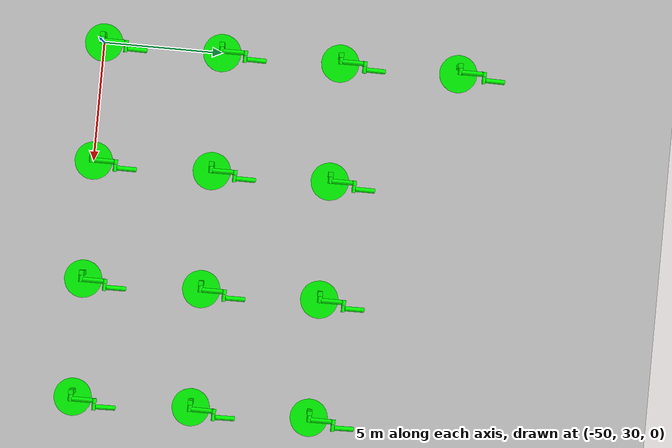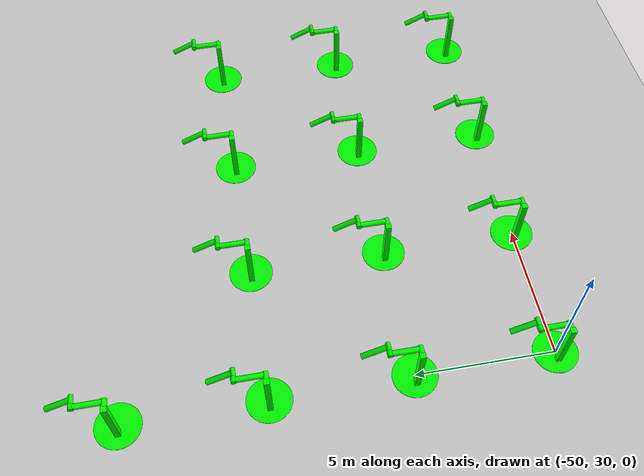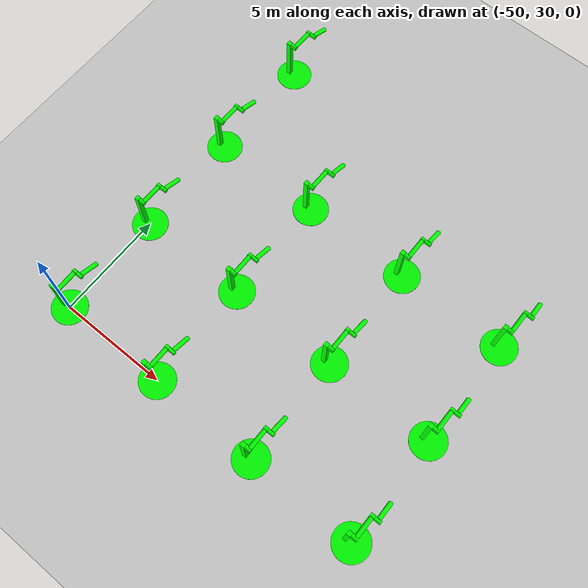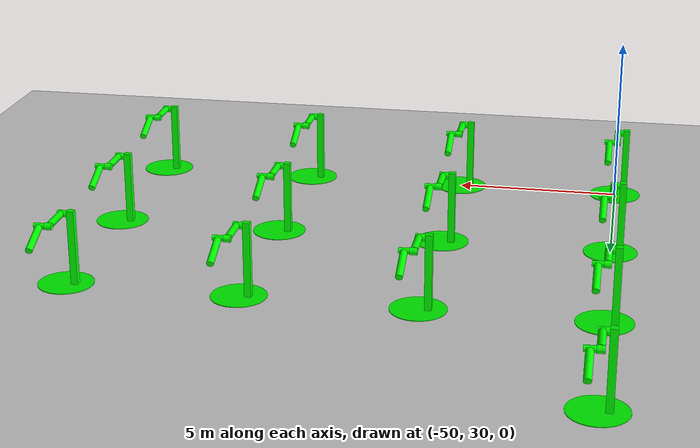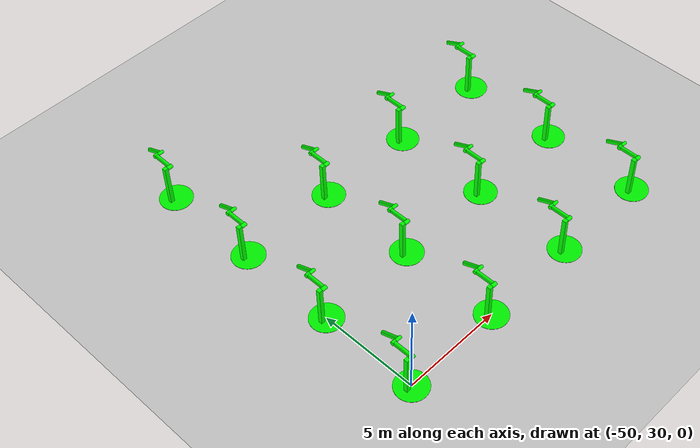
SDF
<sdf version="1.6">
 <world name="double_pendulums">
  <model name="ground_plane">
   <static>true</static>
   <link name="link">
    <collision name="collision">
     <geometry><plane><normal>0 0 1</normal><size>100 100</size></plane></geometry>
    </collision>
    <visual name="visual">
     <geometry><plane><normal>0 0 1</normal><size>100 100</size></plane></geometry>
     <material>
      <ambient>0.8 0.8 0.8 1</ambient>
      <diffuse>0.8 0.8 0.8 1</diffuse>
      <specular>0.8 0.8 0.8 1</specular>
     </material>
    </visual>
   </link>
  </model>
  <model name="dbl_pendulum_150">
   <pose>-50 30 0 0 0 0</pose>
   <link name="base">
    <inertial><mass>100</mass></inertial>
    <visual name="vis_plate_on_ground">
     <pose>0 0 0.01 0 0 0</pose>
     <geometry><cylinder><radius>0.8</radius><length>0.02</length></cylinder></geometry>
     <material><ambient>0 1 0 1</ambient><diffuse>0 1 0 1</diffuse><specular>0 1 0 1</specular></material>
    </visual>
    <visual name="vis_pole">
     <pose>-0.275 0 1.1 0 0 0</pose>
     <geometry><box><size>0.2 0.2 2.2</size></box></geometry>
     <material><ambient>0 1 0 1</ambient><diffuse>0 1 0 1</diffuse><specular>0 1 0 1</specular></material>
    </visual>
    <collision name="col_plate_on_ground">
     <pose>0 0 0.01 0 0 0</pose>
     <geometry><cylinder><radius>0.8</radius><length>0.02</length></cylinder></geometry>
    </collision>
    <collision name="col_pole">
     <pose>-0.275 0 1.1 0 0 0</pose>
     <geometry><box><size>0.2 0.2 2.2</size></box></geometry>
    </collision>
   </link>
   <link name="upper_link">
    <pose>0 0 2.1 -1.5708 0 0</pose>
    <inertial><pose>0 0 0.5 0 0 0</pose></inertial>
    <visual name="vis_upper_joint">
     <pose>-0.05 0 0 0 1.5708 0</pose>
     <geometry><cylinder><radius>0.1</radius><length>0.3</length></cylinder></geometry>
     <material><ambient>0 1 0 1</ambient><diffuse>0 1 0 1</diffuse><specular>0 1 0 1</specular></material>
    </visual>
    <visual name="vis_lower_joint">
     <pose>0 0 1.0 0 1.5708 0</pose>
     <geometry><cylinder><radius>0.1</radius><length>0.2</length></cylinder></geometry>
     <material><ambient>0 1 0 1</ambient><diffuse>0 1 0 1</diffuse><specular>0 1 0 1</specular></material>
    </visual>
    <visual name="vis_cylinder">
     <pose>0 0 0.5 0 0 0</pose>
     <geometry><cylinder><radius>0.1</radius><length>0.9</length></cylinder></geometry>
     <material><ambient>0 1 0 1</ambient><diffuse>0 1 0 1</diffuse><specular>0 1 0 1</specular></material>
    </visual>
    <collision name="col_upper_joint">
     <pose>-0.05 0 0 0 1.5708 0</pose>
     <geometry><cylinder><radius>0.1</radius><length>0.3</length></cylinder></geometry>
    </collision>
    <collision name="col_lower_joint">
     <pose>0 0 1.0 0 1.5708 0</pose>
     <geometry><cylinder><radius>0.1</radius><length>0.2</length></cylinder></geometry>
    </collision>
    <collision name="col_cylinder">
     <pose>0 0 0.5 0 0 0</pose>
     <geometry><cylinder><radius>0.1</radius><length>0.9</length></cylinder></geometry>
    </collision>
   </link>
   <link name="lower_link">
    <pose>0.25 1.0 2.1 -2 0 0</pose>
    <inertial><pose>0 0 0.5 0 0 0</pose></inertial>
    <visual name="vis_lower_joint">
     <pose>0 0 0 0 1.5708 0</pose>
     <geometry><cylinder><radius>0.08</radius><length>0.3</length></cylinder></geometry>
     <material><ambient>0 1 0 1</ambient><diffuse>0 1 0 1</diffuse><specular>0 1 0 1</specular></material>
    </visual>
    <visual name="vis_cylinder">
     <pose>0 0 0.5 0 0 0</pose>
     <geometry><cylinder><radius>0.1</radius><length>0.9</length></cylinder></geometry>
     <material><ambient>0 1 0 1</ambient><diffuse>0 1 0 1</diffuse><specular>0 1 0 1</specular></material>
    </visual>
    <collision name="col_lower_joint">
     <pose>0 0 0 0 1.5708 0</pose>
     <geometry><cylinder><radius>0.08</radius><length>0.3</length></cylinder></geometry>
    </collision>
    <collision name="col_cylinder">
     <pose>0 0 0.5 0 0 0</pose>
     <geometry><cylinder><radius>0.1</radius><length>0.9</length></cylinder></geometry>
    </collision>
   </link>
   <joint name="upper_joint" type="revolute">
    <parent>base</parent>
    <child>upper_link</child>
    <axis><xyz>1.0 0 0</xyz></axis>
   </joint>
   <joint name="lower_joint" type="revolute">
    <parent>upper_link</parent>
    <child>lower_link</child>
    <axis><xyz>1.0 0 0</xyz></axis>
   </joint>
  </model>
  <model name="dbl_pendulum_151">
   <pose>-45 30 0 0 0 0</pose>
   <link name="base">
    <inertial><mass>100</mass></inertial>
    <visual name="vis_plate_on_ground">
     <pose>0 0 0.01 0 0 0</pose>
     <geometry><cylinder><radius>0.8</radius><length>0.02</length></cylinder></geometry>
     <material><ambient>0 1 0 1</ambient><diffuse>0 1 0 1</diffuse><specular>0 1 0 1</specular></material>
    </visual>
    <visual name="vis_pole">
     <pose>-0.275 0 1.1 0 0 0</pose>
     <geometry><box><size>0.2 0.2 2.2</size></box></geometry>
     <material><ambient>0 1 0 1</ambient><diffuse>0 1 0 1</diffuse><specular>0 1 0 1</specular></material>
    </visual>
    <collision name="col_plate_on_ground">
     <pose>0 0 0.01 0 0 0</pose>
     <geometry><cylinder><radius>0.8</radius><length>0.02</length></cylinder></geometry>
    </collision>
    <collision name="col_pole">
     <pose>-0.275 0 1.1 0 0 0</pose>
     <geometry><box><size>0.2 0.2 2.2</size></box></geometry>
    </collision>
   </link>
   <link name="upper_link">
    <pose>0 0 2.1 -1.5708 0 0</pose>
    <inertial><pose>0 0 0.5 0 0 0</pose></inertial>
    <visual name="vis_upper_joint">
     <pose>-0.05 0 0 0 1.5708 0</pose>
     <geometry><cylinder><radius>0.1</radius><length>0.3</length></cylinder></geometry>
     <material><ambient>0 1 0 1</ambient><diffuse>0 1 0 1</diffuse><specular>0 1 0 1</specular></material>
    </visual>
    <visual name="vis_lower_joint">
     <pose>0 0 1.0 0 1.5708 0</pose>
     <geometry><cylinder><radius>0.1</radius><length>0.2</length></cylinder></geometry>
     <material><ambient>0 1 0 1</ambient><diffuse>0 1 0 1</diffuse><specular>0 1 0 1</specular></material>
    </visual>
    <visual name="vis_cylinder">
     <pose>0 0 0.5 0 0 0</pose>
     <geometry><cylinder><radius>0.1</radius><length>0.9</length></cylinder></geometry>
     <material><ambient>0 1 0 1</ambient><diffuse>0 1 0 1</diffuse><specular>0 1 0 1</specular></material>
    </visual>
    <collision name="col_upper_joint">
     <pose>-0.05 0 0 0 1.5708 0</pose>
     <geometry><cylinder><radius>0.1</radius><length>0.3</length></cylinder></geometry>
    </collision>
    <collision name="col_lower_joint">
     <pose>0 0 1.0 0 1.5708 0</pose>
     <geometry><cylinder><radius>0.1</radius><length>0.2</length></cylinder></geometry>
    </collision>
    <collision name="col_cylinder">
     <pose>0 0 0.5 0 0 0</pose>
     <geometry><cylinder><radius>0.1</radius><length>0.9</length></cylinder></geometry>
    </collision>
   </link>
   <link name="lower_link">
    <pose>0.25 1.0 2.1 -2 0 0</pose>
    <inertial><pose>0 0 0.5 0 0 0</pose></inertial>
    <visual name="vis_lower_joint">
     <pose>0 0 0 0 1.5708 0</pose>
     <geometry><cylinder><radius>0.08</radius><length>0.3</length></cylinder></geometry>
     <material><ambient>0 1 0 1</ambient><diffuse>0 1 0 1</diffuse><specular>0 1 0 1</specular></material>
    </visual>
    <visual name="vis_cylinder">
     <pose>0 0 0.5 0 0 0</pose>
     <geometry><cylinder><radius>0.1</radius><length>0.9</length></cylinder></geometry>
     <material><ambient>0 1 0 1</ambient><diffuse>0 1 0 1</diffuse><specular>0 1 0 1</specular></material>
    </visual>
    <collision name="col_lower_joint">
     <pose>0 0 0 0 1.5708 0</pose>
     <geometry><cylinder><radius>0.08</radius><length>0.3</length></cylinder></geometry>
    </collision>
    <collision name="col_cylinder">
     <pose>0 0 0.5 0 0 0</pose>
     <geometry><cylinder><radius>0.1</radius><length>0.9</length></cylinder></geometry>
    </collision>
   </link>
   <joint name="upper_joint" type="revolute">
    <parent>base</parent>
    <child>upper_link</child>
    <axis><xyz>1.0 0 0</xyz></axis>
   </joint>
   <joint name="lower_joint" type="revolute">
    <parent>upper_link</parent>
    <child>lower_link</child>
    <axis><xyz>1.0 0 0</xyz></axis>
   </joint>
  </model>
  <model name="dbl_pendulum_152">
   <pose>-40 30 0 0 0 0</pose>
   <link name="base">
    <inertial><mass>100</mass></inertial>
    <visual name="vis_plate_on_ground">
     <pose>0 0 0.01 0 0 0</pose>
     <geometry><cylinder><radius>0.8</radius><length>0.02</length></cylinder></geometry>
     <material><ambient>0 1 0 1</ambient><diffuse>0 1 0 1</diffuse><specular>0 1 0 1</specular></material>
    </visual>
    <visual name="vis_pole">
     <pose>-0.275 0 1.1 0 0 0</pose>
     <geometry><box><size>0.2 0.2 2.2</size></box></geometry>
     <material><ambient>0 1 0 1</ambient><diffuse>0 1 0 1</diffuse><specular>0 1 0 1</specular></material>
    </visual>
    <collision name="col_plate_on_ground">
     <pose>0 0 0.01 0 0 0</pose>
     <geometry><cylinder><radius>0.8</radius><length>0.02</length></cylinder></geometry>
    </collision>
    <collision name="col_pole">
     <pose>-0.275 0 1.1 0 0 0</pose>
     <geometry><box><size>0.2 0.2 2.2</size></box></geometry>
    </collision>
   </link>
   <link name="upper_link">
    <pose>0 0 2.1 -1.5708 0 0</pose>
    <inertial><pose>0 0 0.5 0 0 0</pose></inertial>
    <visual name="vis_upper_joint">
     <pose>-0.05 0 0 0 1.5708 0</pose>
     <geometry><cylinder><radius>0.1</radius><length>0.3</length></cylinder></geometry>
     <material><ambient>0 1 0 1</ambient><diffuse>0 1 0 1</diffuse><specular>0 1 0 1</specular></material>
    </visual>
    <visual name="vis_lower_joint">
     <pose>0 0 1.0 0 1.5708 0</pose>
     <geometry><cylinder><radius>0.1</radius><length>0.2</length></cylinder></geometry>
     <material><ambient>0 1 0 1</ambient><diffuse>0 1 0 1</diffuse><specular>0 1 0 1</specular></material>
    </visual>
    <visual name="vis_cylinder">
     <pose>0 0 0.5 0 0 0</pose>
     <geometry><cylinder><radius>0.1</radius><length>0.9</length></cylinder></geometry>
     <material><ambient>0 1 0 1</ambient><diffuse>0 1 0 1</diffuse><specular>0 1 0 1</specular></material>
    </visual>
    <collision name="col_upper_joint">
     <pose>-0.05 0 0 0 1.5708 0</pose>
     <geometry><cylinder><radius>0.1</radius><length>0.3</length></cylinder></geometry>
    </collision>
    <collision name="col_lower_joint">
     <pose>0 0 1.0 0 1.5708 0</pose>
     <geometry><cylinder><radius>0.1</radius><length>0.2</length></cylinder></geometry>
    </collision>
    <collision name="col_cylinder">
     <pose>0 0 0.5 0 0 0</pose>
     <geometry><cylinder><radius>0.1</radius><length>0.9</length></cylinder></geometry>
    </collision>
   </link>
   <link name="lower_link">
    <pose>0.25 1.0 2.1 -2 0 0</pose>
    <inertial><pose>0 0 0.5 0 0 0</pose></inertial>
    <visual name="vis_lower_joint">
     <pose>0 0 0 0 1.5708 0</pose>
     <geometry><cylinder><radius>0.08</radius><length>0.3</length></cylinder></geometry>
     <material><ambient>0 1 0 1</ambient><diffuse>0 1 0 1</diffuse><specular>0 1 0 1</specular></material>
    </visual>
    <visual name="vis_cylinder">
     <pose>0 0 0.5 0 0 0</pose>
     <geometry><cylinder><radius>0.1</radius><length>0.9</length></cylinder></geometry>
     <material><ambient>0 1 0 1</ambient><diffuse>0 1 0 1</diffuse><specular>0 1 0 1</specular></material>
    </visual>
    <collision name="col_lower_joint">
     <pose>0 0 0 0 1.5708 0</pose>
     <geometry><cylinder><radius>0.08</radius><length>0.3</length></cylinder></geometry>
    </collision>
    <collision name="col_cylinder">
     <pose>0 0 0.5 0 0 0</pose>
     <geometry><cylinder><radius>0.1</radius><length>0.9</length></cylinder></geometry>
    </collision>
   </link>
   <joint name="upper_joint" type="revolute">
    <parent>base</parent>
    <child>upper_link</child>
    <axis><xyz>1.0 0 0</xyz></axis>
   </joint>
   <joint name="lower_joint" type="revolute">
    <parent>upper_link</parent>
    <child>lower_link</child>
    <axis><xyz>1.0 0 0</xyz></axis>
   </joint>
  </model>
  <model name="dbl_pendulum_153">
   <pose>-35 30 0 0 0 0</pose>
   <link name="base">
    <inertial><mass>100</mass></inertial>
    <visual name="vis_plate_on_ground">
     <pose>0 0 0.01 0 0 0</pose>
     <geometry><cylinder><radius>0.8</radius><length>0.02</length></cylinder></geometry>
     <material><ambient>0 1 0 1</ambient><diffuse>0 1 0 1</diffuse><specular>0 1 0 1</specular></material>
    </visual>
    <visual name="vis_pole">
     <pose>-0.275 0 1.1 0 0 0</pose>
     <geometry><box><size>0.2 0.2 2.2</size></box></geometry>
     <material><ambient>0 1 0 1</ambient><diffuse>0 1 0 1</diffuse><specular>0 1 0 1</specular></material>
    </visual>
    <collision name="col_plate_on_ground">
     <pose>0 0 0.01 0 0 0</pose>
     <geometry><cylinder><radius>0.8</radius><length>0.02</length></cylinder></geometry>
    </collision>
    <collision name="col_pole">
     <pose>-0.275 0 1.1 0 0 0</pose>
     <geometry><box><size>0.2 0.2 2.2</size></box></geometry>
    </collision>
   </link>
   <link name="upper_link">
    <pose>0 0 2.1 -1.5708 0 0</pose>
    <inertial><pose>0 0 0.5 0 0 0</pose></inertial>
    <visual name="vis_upper_joint">
     <pose>-0.05 0 0 0 1.5708 0</pose>
     <geometry><cylinder><radius>0.1</radius><length>0.3</length></cylinder></geometry>
     <material><ambient>0 1 0 1</ambient><diffuse>0 1 0 1</diffuse><specular>0 1 0 1</specular></material>
    </visual>
    <visual name="vis_lower_joint">
     <pose>0 0 1.0 0 1.5708 0</pose>
     <geometry><cylinder><radius>0.1</radius><length>0.2</length></cylinder></geometry>
     <material><ambient>0 1 0 1</ambient><diffuse>0 1 0 1</diffuse><specular>0 1 0 1</specular></material>
    </visual>
    <visual name="vis_cylinder">
     <pose>0 0 0.5 0 0 0</pose>
     <geometry><cylinder><radius>0.1</radius><length>0.9</length></cylinder></geometry>
     <material><ambient>0 1 0 1</ambient><diffuse>0 1 0 1</diffuse><specular>0 1 0 1</specular></material>
    </visual>
    <collision name="col_upper_joint">
     <pose>-0.05 0 0 0 1.5708 0</pose>
     <geometry><cylinder><radius>0.1</radius><length>0.3</length></cylinder></geometry>
    </collision>
    <collision name="col_lower_joint">
     <pose>0 0 1.0 0 1.5708 0</pose>
     <geometry><cylinder><radius>0.1</radius><length>0.2</length></cylinder></geometry>
    </collision>
    <collision name="col_cylinder">
     <pose>0 0 0.5 0 0 0</pose>
     <geometry><cylinder><radius>0.1</radius><length>0.9</length></cylinder></geometry>
    </collision>
   </link>
   <link name="lower_link">
    <pose>0.25 1.0 2.1 -2 0 0</pose>
    <inertial><pose>0 0 0.5 0 0 0</pose></inertial>
    <visual name="vis_lower_joint">
     <pose>0 0 0 0 1.5708 0</pose>
     <geometry><cylinder><radius>0.08</radius><length>0.3</length></cylinder></geometry>
     <material><ambient>0 1 0 1</ambient><diffuse>0 1 0 1</diffuse><specular>0 1 0 1</specular></material>
    </visual>
    <visual name="vis_cylinder">
     <pose>0 0 0.5 0 0 0</pose>
     <geometry><cylinder><radius>0.1</radius><length>0.9</length></cylinder></geometry>
     <material><ambient>0 1 0 1</ambient><diffuse>0 1 0 1</diffuse><specular>0 1 0 1</specular></material>
    </visual>
    <collision name="col_lower_joint">
     <pose>0 0 0 0 1.5708 0</pose>
     <geometry><cylinder><radius>0.08</radius><length>0.3</length></cylinder></geometry>
    </collision>
    <collision name="col_cylinder">
     <pose>0 0 0.5 0 0 0</pose>
     <geometry><cylinder><radius>0.1</radius><length>0.9</length></cylinder></geometry>
    </collision>
   </link>
   <joint name="upper_joint" type="revolute">
    <parent>base</parent>
    <child>upper_link</child>
    <axis><xyz>1.0 0 0</xyz></axis>
   </joint>
   <joint name="lower_joint" type="revolute">
    <parent>upper_link</parent>
    <child>lower_link</child>
    <axis><xyz>1.0 0 0</xyz></axis>
   </joint>
  </model>
  <model name="dbl_pendulum_175">
   <pose>-50 35 0 0 0 0</pose>
   <link name="base">
    <inertial><mass>100</mass></inertial>
    <visual name="vis_plate_on_ground">
     <pose>0 0 0.01 0 0 0</pose>
     <geometry><cylinder><radius>0.8</radius><length>0.02</length></cylinder></geometry>
     <material><ambient>0 1 0 1</ambient><diffuse>0 1 0 1</diffuse><specular>0 1 0 1</specular></material>
    </visual>
    <visual name="vis_pole">
     <pose>-0.275 0 1.1 0 0 0</pose>
     <geometry><box><size>0.2 0.2 2.2</size></box></geometry>
     <material><ambient>0 1 0 1</ambient><diffuse>0 1 0 1</diffuse><specular>0 1 0 1</specular></material>
    </visual>
    <collision name="col_plate_on_ground">
     <pose>0 0 0.01 0 0 0</pose>
     <geometry><cylinder><radius>0.8</radius><length>0.02</length></cylinder></geometry>
    </collision>
    <collision name="col_pole">
     <pose>-0.275 0 1.1 0 0 0</pose>
     <geometry><box><size>0.2 0.2 2.2</size></box></geometry>
    </collision>
   </link>
   <link name="upper_link">
    <pose>0 0 2.1 -1.5708 0 0</pose>
    <inertial><pose>0 0 0.5 0 0 0</pose></inertial>
    <visual name="vis_upper_joint">
     <pose>-0.05 0 0 0 1.5708 0</pose>
     <geometry><cylinder><radius>0.1</radius><length>0.3</length></cylinder></geometry>
     <material><ambient>0 1 0 1</ambient><diffuse>0 1 0 1</diffuse><specular>0 1 0 1</specular></material>
    </visual>
    <visual name="vis_lower_joint">
     <pose>0 0 1.0 0 1.5708 0</pose>
     <geometry><cylinder><radius>0.1</radius><length>0.2</length></cylinder></geometry>
     <material><ambient>0 1 0 1</ambient><diffuse>0 1 0 1</diffuse><specular>0 1 0 1</specular></material>
    </visual>
    <visual name="vis_cylinder">
     <pose>0 0 0.5 0 0 0</pose>
     <geometry><cylinder><radius>0.1</radius><length>0.9</length></cylinder></geometry>
     <material><ambient>0 1 0 1</ambient><diffuse>0 1 0 1</diffuse><specular>0 1 0 1</specular></material>
    </visual>
    <collision name="col_upper_joint">
     <pose>-0.05 0 0 0 1.5708 0</pose>
     <geometry><cylinder><radius>0.1</radius><length>0.3</length></cylinder></geometry>
    </collision>
    <collision name="col_lower_joint">
     <pose>0 0 1.0 0 1.5708 0</pose>
     <geometry><cylinder><radius>0.1</radius><length>0.2</length></cylinder></geometry>
    </collision>
    <collision name="col_cylinder">
     <pose>0 0 0.5 0 0 0</pose>
     <geometry><cylinder><radius>0.1</radius><length>0.9</length></cylinder></geometry>
    </collision>
   </link>
   <link name="lower_link">
    <pose>0.25 1.0 2.1 -2 0 0</pose>
    <inertial><pose>0 0 0.5 0 0 0</pose></inertial>
    <visual name="vis_lower_joint">
     <pose>0 0 0 0 1.5708 0</pose>
     <geometry><cylinder><radius>0.08</radius><length>0.3</length></cylinder></geometry>
     <material><ambient>0 1 0 1</ambient><diffuse>0 1 0 1</diffuse><specular>0 1 0 1</specular></material>
    </visual>
    <visual name="vis_cylinder">
     <pose>0 0 0.5 0 0 0</pose>
     <geometry><cylinder><radius>0.1</radius><length>0.9</length></cylinder></geometry>
     <material><ambient>0 1 0 1</ambient><diffuse>0 1 0 1</diffuse><specular>0 1 0 1</specular></material>
    </visual>
    <collision name="col_lower_joint">
     <pose>0 0 0 0 1.5708 0</pose>
     <geometry><cylinder><radius>0.08</radius><length>0.3</length></cylinder></geometry>
    </collision>
    <collision name="col_cylinder">
     <pose>0 0 0.5 0 0 0</pose>
     <geometry><cylinder><radius>0.1</radius><length>0.9</length></cylinder></geometry>
    </collision>
   </link>
   <joint name="upper_joint" type="revolute">
    <parent>base</parent>
    <child>upper_link</child>
    <axis><xyz>1.0 0 0</xyz></axis>
   </joint>
   <joint name="lower_joint" type="revolute">
    <parent>upper_link</parent>
    <child>lower_link</child>
    <axis><xyz>1.0 0 0</xyz></axis>
   </joint>
  </model>
  <model name="dbl_pendulum_176">
   <pose>-45 35 0 0 0 0</pose>
   <link name="base">
    <inertial><mass>100</mass></inertial>
    <visual name="vis_plate_on_ground">
     <pose>0 0 0.01 0 0 0</pose>
     <geometry><cylinder><radius>0.8</radius><length>0.02</length></cylinder></geometry>
     <material><ambient>0 1 0 1</ambient><diffuse>0 1 0 1</diffuse><specular>0 1 0 1</specular></material>
    </visual>
    <visual name="vis_pole">
     <pose>-0.275 0 1.1 0 0 0</pose>
     <geometry><box><size>0.2 0.2 2.2</size></box></geometry>
     <material><ambient>0 1 0 1</ambient><diffuse>0 1 0 1</diffuse><specular>0 1 0 1</specular></material>
    </visual>
    <collision name="col_plate_on_ground">
     <pose>0 0 0.01 0 0 0</pose>
     <geometry><cylinder><radius>0.8</radius><length>0.02</length></cylinder></geometry>
    </collision>
    <collision name="col_pole">
     <pose>-0.275 0 1.1 0 0 0</pose>
     <geometry><box><size>0.2 0.2 2.2</size></box></geometry>
    </collision>
   </link>
   <link name="upper_link">
    <pose>0 0 2.1 -1.5708 0 0</pose>
    <inertial><pose>0 0 0.5 0 0 0</pose></inertial>
    <visual name="vis_upper_joint">
     <pose>-0.05 0 0 0 1.5708 0</pose>
     <geometry><cylinder><radius>0.1</radius><length>0.3</length></cylinder></geometry>
     <material><ambient>0 1 0 1</ambient><diffuse>0 1 0 1</diffuse><specular>0 1 0 1</specular></material>
    </visual>
    <visual name="vis_lower_joint">
     <pose>0 0 1.0 0 1.5708 0</pose>
     <geometry><cylinder><radius>0.1</radius><length>0.2</length></cylinder></geometry>
     <material><ambient>0 1 0 1</ambient><diffuse>0 1 0 1</diffuse><specular>0 1 0 1</specular></material>
    </visual>
    <visual name="vis_cylinder">
     <pose>0 0 0.5 0 0 0</pose>
     <geometry><cylinder><radius>0.1</radius><length>0.9</length></cylinder></geometry>
     <material><ambient>0 1 0 1</ambient><diffuse>0 1 0 1</diffuse><specular>0 1 0 1</specular></material>
    </visual>
    <collision name="col_upper_joint">
     <pose>-0.05 0 0 0 1.5708 0</pose>
     <geometry><cylinder><radius>0.1</radius><length>0.3</length></cylinder></geometry>
    </collision>
    <collision name="col_lower_joint">
     <pose>0 0 1.0 0 1.5708 0</pose>
     <geometry><cylinder><radius>0.1</radius><length>0.2</length></cylinder></geometry>
    </collision>
    <collision name="col_cylinder">
     <pose>0 0 0.5 0 0 0</pose>
     <geometry><cylinder><radius>0.1</radius><length>0.9</length></cylinder></geometry>
    </collision>
   </link>
   <link name="lower_link">
    <pose>0.25 1.0 2.1 -2 0 0</pose>
    <inertial><pose>0 0 0.5 0 0 0</pose></inertial>
    <visual name="vis_lower_joint">
     <pose>0 0 0 0 1.5708 0</pose>
     <geometry><cylinder><radius>0.08</radius><length>0.3</length></cylinder></geometry>
     <material><ambient>0 1 0 1</ambient><diffuse>0 1 0 1</diffuse><specular>0 1 0 1</specular></material>
    </visual>
    <visual name="vis_cylinder">
     <pose>0 0 0.5 0 0 0</pose>
     <geometry><cylinder><radius>0.1</radius><length>0.9</length></cylinder></geometry>
     <material><ambient>0 1 0 1</ambient><diffuse>0 1 0 1</diffuse><specular>0 1 0 1</specular></material>
    </visual>
    <collision name="col_lower_joint">
     <pose>0 0 0 0 1.5708 0</pose>
     <geometry><cylinder><radius>0.08</radius><length>0.3</length></cylinder></geometry>
    </collision>
    <collision name="col_cylinder">
     <pose>0 0 0.5 0 0 0</pose>
     <geometry><cylinder><radius>0.1</radius><length>0.9</length></cylinder></geometry>
    </collision>
   </link>
   <joint name="upper_joint" type="revolute">
    <parent>base</parent>
    <child>upper_link</child>
    <axis><xyz>1.0 0 0</xyz></axis>
   </joint>
   <joint name="lower_joint" type="revolute">
    <parent>upper_link</parent>
    <child>lower_link</child>
    <axis><xyz>1.0 0 0</xyz></axis>
   </joint>
  </model>
  <model name="dbl_pendulum_177">
   <pose>-40 35 0 0 0 0</pose>
   <link name="base">
    <inertial><mass>100</mass></inertial>
    <visual name="vis_plate_on_ground">
     <pose>0 0 0.01 0 0 0</pose>
     <geometry><cylinder><radius>0.8</radius><length>0.02</length></cylinder></geometry>
     <material><ambient>0 1 0 1</ambient><diffuse>0 1 0 1</diffuse><specular>0 1 0 1</specular></material>
    </visual>
    <visual name="vis_pole">
     <pose>-0.275 0 1.1 0 0 0</pose>
     <geometry><box><size>0.2 0.2 2.2</size></box></geometry>
     <material><ambient>0 1 0 1</ambient><diffuse>0 1 0 1</diffuse><specular>0 1 0 1</specular></material>
    </visual>
    <collision name="col_plate_on_ground">
     <pose>0 0 0.01 0 0 0</pose>
     <geometry><cylinder><radius>0.8</radius><length>0.02</length></cylinder></geometry>
    </collision>
    <collision name="col_pole">
     <pose>-0.275 0 1.1 0 0 0</pose>
     <geometry><box><size>0.2 0.2 2.2</size></box></geometry>
    </collision>
   </link>
   <link name="upper_link">
    <pose>0 0 2.1 -1.5708 0 0</pose>
    <inertial><pose>0 0 0.5 0 0 0</pose></inertial>
    <visual name="vis_upper_joint">
     <pose>-0.05 0 0 0 1.5708 0</pose>
     <geometry><cylinder><radius>0.1</radius><length>0.3</length></cylinder></geometry>
     <material><ambient>0 1 0 1</ambient><diffuse>0 1 0 1</diffuse><specular>0 1 0 1</specular></material>
    </visual>
    <visual name="vis_lower_joint">
     <pose>0 0 1.0 0 1.5708 0</pose>
     <geometry><cylinder><radius>0.1</radius><length>0.2</length></cylinder></geometry>
     <material><ambient>0 1 0 1</ambient><diffuse>0 1 0 1</diffuse><specular>0 1 0 1</specular></material>
    </visual>
    <visual name="vis_cylinder">
     <pose>0 0 0.5 0 0 0</pose>
     <geometry><cylinder><radius>0.1</radius><length>0.9</length></cylinder></geometry>
     <material><ambient>0 1 0 1</ambient><diffuse>0 1 0 1</diffuse><specular>0 1 0 1</specular></material>
    </visual>
    <collision name="col_upper_joint">
     <pose>-0.05 0 0 0 1.5708 0</pose>
     <geometry><cylinder><radius>0.1</radius><length>0.3</length></cylinder></geometry>
    </collision>
    <collision name="col_lower_joint">
     <pose>0 0 1.0 0 1.5708 0</pose>
     <geometry><cylinder><radius>0.1</radius><length>0.2</length></cylinder></geometry>
    </collision>
    <collision name="col_cylinder">
     <pose>0 0 0.5 0 0 0</pose>
     <geometry><cylinder><radius>0.1</radius><length>0.9</length></cylinder></geometry>
    </collision>
   </link>
   <link name="lower_link">
    <pose>0.25 1.0 2.1 -2 0 0</pose>
    <inertial><pose>0 0 0.5 0 0 0</pose></inertial>
    <visual name="vis_lower_joint">
     <pose>0 0 0 0 1.5708 0</pose>
     <geometry><cylinder><radius>0.08</radius><length>0.3</length></cylinder></geometry>
     <material><ambient>0 1 0 1</ambient><diffuse>0 1 0 1</diffuse><specular>0 1 0 1</specular></material>
    </visual>
    <visual name="vis_cylinder">
     <pose>0 0 0.5 0 0 0</pose>
     <geometry><cylinder><radius>0.1</radius><length>0.9</length></cylinder></geometry>
     <material><ambient>0 1 0 1</ambient><diffuse>0 1 0 1</diffuse><specular>0 1 0 1</specular></material>
    </visual>
    <collision name="col_lower_joint">
     <pose>0 0 0 0 1.5708 0</pose>
     <geometry><cylinder><radius>0.08</radius><length>0.3</length></cylinder></geometry>
    </collision>
    <collision name="col_cylinder">
     <pose>0 0 0.5 0 0 0</pose>
     <geometry><cylinder><radius>0.1</radius><length>0.9</length></cylinder></geometry>
    </collision>
   </link>
   <joint name="upper_joint" type="revolute">
    <parent>base</parent>
    <child>upper_link</child>
    <axis><xyz>1.0 0 0</xyz></axis>
   </joint>
   <joint name="lower_joint" type="revolute">
    <parent>upper_link</parent>
    <child>lower_link</child>
    <axis><xyz>1.0 0 0</xyz></axis>
   </joint>
  </model>
  <model name="dbl_pendulum_178">
   <pose>-35 35 0 0 0 0</pose>
   <link name="base">
    <inertial><mass>100</mass></inertial>
    <visual name="vis_plate_on_ground">
     <pose>0 0 0.01 0 0 0</pose>
     <geometry><cylinder><radius>0.8</radius><length>0.02</length></cylinder></geometry>
     <material><ambient>0 1 0 1</ambient><diffuse>0 1 0 1</diffuse><specular>0 1 0 1</specular></material>
    </visual>
    <visual name="vis_pole">
     <pose>-0.275 0 1.1 0 0 0</pose>
     <geometry><box><size>0.2 0.2 2.2</size></box></geometry>
     <material><ambient>0 1 0 1</ambient><diffuse>0 1 0 1</diffuse><specular>0 1 0 1</specular></material>
    </visual>
    <collision name="col_plate_on_ground">
     <pose>0 0 0.01 0 0 0</pose>
     <geometry><cylinder><radius>0.8</radius><length>0.02</length></cylinder></geometry>
    </collision>
    <collision name="col_pole">
     <pose>-0.275 0 1.1 0 0 0</pose>
     <geometry><box><size>0.2 0.2 2.2</size></box></geometry>
    </collision>
   </link>
   <link name="upper_link">
    <pose>0 0 2.1 -1.5708 0 0</pose>
    <inertial><pose>0 0 0.5 0 0 0</pose></inertial>
    <visual name="vis_upper_joint">
     <pose>-0.05 0 0 0 1.5708 0</pose>
     <geometry><cylinder><radius>0.1</radius><length>0.3</length></cylinder></geometry>
     <material><ambient>0 1 0 1</ambient><diffuse>0 1 0 1</diffuse><specular>0 1 0 1</specular></material>
    </visual>
    <visual name="vis_lower_joint">
     <pose>0 0 1.0 0 1.5708 0</pose>
     <geometry><cylinder><radius>0.1</radius><length>0.2</length></cylinder></geometry>
     <material><ambient>0 1 0 1</ambient><diffuse>0 1 0 1</diffuse><specular>0 1 0 1</specular></material>
    </visual>
    <visual name="vis_cylinder">
     <pose>0 0 0.5 0 0 0</pose>
     <geometry><cylinder><radius>0.1</radius><length>0.9</length></cylinder></geometry>
     <material><ambient>0 1 0 1</ambient><diffuse>0 1 0 1</diffuse><specular>0 1 0 1</specular></material>
    </visual>
    <collision name="col_upper_joint">
     <pose>-0.05 0 0 0 1.5708 0</pose>
     <geometry><cylinder><radius>0.1</radius><length>0.3</length></cylinder></geometry>
    </collision>
    <collision name="col_lower_joint">
     <pose>0 0 1.0 0 1.5708 0</pose>
     <geometry><cylinder><radius>0.1</radius><length>0.2</length></cylinder></geometry>
    </collision>
    <collision name="col_cylinder">
     <pose>0 0 0.5 0 0 0</pose>
     <geometry><cylinder><radius>0.1</radius><length>0.9</length></cylinder></geometry>
    </collision>
   </link>
   <link name="lower_link">
    <pose>0.25 1.0 2.1 -2 0 0</pose>
    <inertial><pose>0 0 0.5 0 0 0</pose></inertial>
    <visual name="vis_lower_joint">
     <pose>0 0 0 0 1.5708 0</pose>
     <geometry><cylinder><radius>0.08</radius><length>0.3</length></cylinder></geometry>
     <material><ambient>0 1 0 1</ambient><diffuse>0 1 0 1</diffuse><specular>0 1 0 1</specular></material>
    </visual>
    <visual name="vis_cylinder">
     <pose>0 0 0.5 0 0 0</pose>
     <geometry><cylinder><radius>0.1</radius><length>0.9</length></cylinder></geometry>
     <material><ambient>0 1 0 1</ambient><diffuse>0 1 0 1</diffuse><specular>0 1 0 1</specular></material>
    </visual>
    <collision name="col_lower_joint">
     <pose>0 0 0 0 1.5708 0</pose>
     <geometry><cylinder><radius>0.08</radius><length>0.3</length></cylinder></geometry>
    </collision>
    <collision name="col_cylinder">
     <pose>0 0 0.5 0 0 0</pose>
     <geometry><cylinder><radius>0.1</radius><length>0.9</length></cylinder></geometry>
    </collision>
   </link>
   <joint name="upper_joint" type="revolute">
    <parent>base</parent>
    <child>upper_link</child>
    <axis><xyz>1.0 0 0</xyz></axis>
   </joint>
   <joint name="lower_joint" type="revolute">
    <parent>upper_link</parent>
    <child>lower_link</child>
    <axis><xyz>1.0 0 0</xyz></axis>
   </joint>
  </model>
  <model name="dbl_pendulum_200">
   <pose>-50 40 0 0 0 0</pose>
   <link name="base">
    <inertial><mass>100</mass></inertial>
    <visual name="vis_plate_on_ground">
     <pose>0 0 0.01 0 0 0</pose>
     <geometry><cylinder><radius>0.8</radius><length>0.02</length></cylinder></geometry>
     <material><ambient>0 1 0 1</ambient><diffuse>0 1 0 1</diffuse><specular>0 1 0 1</specular></material>
    </visual>
    <visual name="vis_pole">
     <pose>-0.275 0 1.1 0 0 0</pose>
     <geometry><box><size>0.2 0.2 2.2</size></box></geometry>
     <material><ambient>0 1 0 1</ambient><diffuse>0 1 0 1</diffuse><specular>0 1 0 1</specular></material>
    </visual>
    <collision name="col_plate_on_ground">
     <pose>0 0 0.01 0 0 0</pose>
     <geometry><cylinder><radius>0.8</radius><length>0.02</length></cylinder></geometry>
    </collision>
    <collision name="col_pole">
     <pose>-0.275 0 1.1 0 0 0</pose>
     <geometry><box><size>0.2 0.2 2.2</size></box></geometry>
    </collision>
   </link>
   <link name="upper_link">
    <pose>0 0 2.1 -1.5708 0 0</pose>
    <inertial><pose>0 0 0.5 0 0 0</pose></inertial>
    <visual name="vis_upper_joint">
     <pose>-0.05 0 0 0 1.5708 0</pose>
     <geometry><cylinder><radius>0.1</radius><length>0.3</length></cylinder></geometry>
     <material><ambient>0 1 0 1</ambient><diffuse>0 1 0 1</diffuse><specular>0 1 0 1</specular></material>
    </visual>
    <visual name="vis_lower_joint">
     <pose>0 0 1.0 0 1.5708 0</pose>
     <geometry><cylinder><radius>0.1</radius><length>0.2</length></cylinder></geometry>
     <material><ambient>0 1 0 1</ambient><diffuse>0 1 0 1</diffuse><specular>0 1 0 1</specular></material>
    </visual>
    <visual name="vis_cylinder">
     <pose>0 0 0.5 0 0 0</pose>
     <geometry><cylinder><radius>0.1</radius><length>0.9</length></cylinder></geometry>
     <material><ambient>0 1 0 1</ambient><diffuse>0 1 0 1</diffuse><specular>0 1 0 1</specular></material>
    </visual>
    <collision name="col_upper_joint">
     <pose>-0.05 0 0 0 1.5708 0</pose>
     <geometry><cylinder><radius>0.1</radius><length>0.3</length></cylinder></geometry>
    </collision>
    <collision name="col_lower_joint">
     <pose>0 0 1.0 0 1.5708 0</pose>
     <geometry><cylinder><radius>0.1</radius><length>0.2</length></cylinder></geometry>
    </collision>
    <collision name="col_cylinder">
     <pose>0 0 0.5 0 0 0</pose>
     <geometry><cylinder><radius>0.1</radius><length>0.9</length></cylinder></geometry>
    </collision>
   </link>
   <link name="lower_link">
    <pose>0.25 1.0 2.1 -2 0 0</pose>
    <inertial><pose>0 0 0.5 0 0 0</pose></inertial>
    <visual name="vis_lower_joint">
     <pose>0 0 0 0 1.5708 0</pose>
     <geometry><cylinder><radius>0.08</radius><length>0.3</length></cylinder></geometry>
     <material><ambient>0 1 0 1</ambient><diffuse>0 1 0 1</diffuse><specular>0 1 0 1</specular></material>
    </visual>
    <visual name="vis_cylinder">
     <pose>0 0 0.5 0 0 0</pose>
     <geometry><cylinder><radius>0.1</radius><length>0.9</length></cylinder></geometry>
     <material><ambient>0 1 0 1</ambient><diffuse>0 1 0 1</diffuse><specular>0 1 0 1</specular></material>
    </visual>
    <collision name="col_lower_joint">
     <pose>0 0 0 0 1.5708 0</pose>
     <geometry><cylinder><radius>0.08</radius><length>0.3</length></cylinder></geometry>
    </collision>
    <collision name="col_cylinder">
     <pose>0 0 0.5 0 0 0</pose>
     <geometry><cylinder><radius>0.1</radius><length>0.9</length></cylinder></geometry>
    </collision>
   </link>
   <joint name="upper_joint" type="revolute">
    <parent>base</parent>
    <child>upper_link</child>
    <axis><xyz>1.0 0 0</xyz></axis>
   </joint>
   <joint name="lower_joint" type="revolute">
    <parent>upper_link</parent>
    <child>lower_link</child>
    <axis><xyz>1.0 0 0</xyz></axis>
   </joint>
  </model>
  <model name="dbl_pendulum_201">
   <pose>-45 40 0 0 0 0</pose>
   <link name="base">
    <inertial><mass>100</mass></inertial>
    <visual name="vis_plate_on_ground">
     <pose>0 0 0.01 0 0 0</pose>
     <geometry><cylinder><radius>0.8</radius><length>0.02</length></cylinder></geometry>
     <material><ambient>0 1 0 1</ambient><diffuse>0 1 0 1</diffuse><specular>0 1 0 1</specular></material>
    </visual>
    <visual name="vis_pole">
     <pose>-0.275 0 1.1 0 0 0</pose>
     <geometry><box><size>0.2 0.2 2.2</size></box></geometry>
     <material><ambient>0 1 0 1</ambient><diffuse>0 1 0 1</diffuse><specular>0 1 0 1</specular></material>
    </visual>
    <collision name="col_plate_on_ground">
     <pose>0 0 0.01 0 0 0</pose>
     <geometry><cylinder><radius>0.8</radius><length>0.02</length></cylinder></geometry>
    </collision>
    <collision name="col_pole">
     <pose>-0.275 0 1.1 0 0 0</pose>
     <geometry><box><size>0.2 0.2 2.2</size></box></geometry>
    </collision>
   </link>
   <link name="upper_link">
    <pose>0 0 2.1 -1.5708 0 0</pose>
    <inertial><pose>0 0 0.5 0 0 0</pose></inertial>
    <visual name="vis_upper_joint">
     <pose>-0.05 0 0 0 1.5708 0</pose>
     <geometry><cylinder><radius>0.1</radius><length>0.3</length></cylinder></geometry>
     <material><ambient>0 1 0 1</ambient><diffuse>0 1 0 1</diffuse><specular>0 1 0 1</specular></material>
    </visual>
    <visual name="vis_lower_joint">
     <pose>0 0 1.0 0 1.5708 0</pose>
     <geometry><cylinder><radius>0.1</radius><length>0.2</length></cylinder></geometry>
     <material><ambient>0 1 0 1</ambient><diffuse>0 1 0 1</diffuse><specular>0 1 0 1</specular></material>
    </visual>
    <visual name="vis_cylinder">
     <pose>0 0 0.5 0 0 0</pose>
     <geometry><cylinder><radius>0.1</radius><length>0.9</length></cylinder></geometry>
     <material><ambient>0 1 0 1</ambient><diffuse>0 1 0 1</diffuse><specular>0 1 0 1</specular></material>
    </visual>
    <collision name="col_upper_joint">
     <pose>-0.05 0 0 0 1.5708 0</pose>
     <geometry><cylinder><radius>0.1</radius><length>0.3</length></cylinder></geometry>
    </collision>
    <collision name="col_lower_joint">
     <pose>0 0 1.0 0 1.5708 0</pose>
     <geometry><cylinder><radius>0.1</radius><length>0.2</length></cylinder></geometry>
    </collision>
    <collision name="col_cylinder">
     <pose>0 0 0.5 0 0 0</pose>
     <geometry><cylinder><radius>0.1</radius><length>0.9</length></cylinder></geometry>
    </collision>
   </link>
   <link name="lower_link">
    <pose>0.25 1.0 2.1 -2 0 0</pose>
    <inertial><pose>0 0 0.5 0 0 0</pose></inertial>
    <visual name="vis_lower_joint">
     <pose>0 0 0 0 1.5708 0</pose>
     <geometry><cylinder><radius>0.08</radius><length>0.3</length></cylinder></geometry>
     <material><ambient>0 1 0 1</ambient><diffuse>0 1 0 1</diffuse><specular>0 1 0 1</specular></material>
    </visual>
    <visual name="vis_cylinder">
     <pose>0 0 0.5 0 0 0</pose>
     <geometry><cylinder><radius>0.1</radius><length>0.9</length></cylinder></geometry>
     <material><ambient>0 1 0 1</ambient><diffuse>0 1 0 1</diffuse><specular>0 1 0 1</specular></material>
    </visual>
    <collision name="col_lower_joint">
     <pose>0 0 0 0 1.5708 0</pose>
     <geometry><cylinder><radius>0.08</radius><length>0.3</length></cylinder></geometry>
    </collision>
    <collision name="col_cylinder">
     <pose>0 0 0.5 0 0 0</pose>
     <geometry><cylinder><radius>0.1</radius><length>0.9</length></cylinder></geometry>
    </collision>
   </link>
   <joint name="upper_joint" type="revolute">
    <parent>base</parent>
    <child>upper_link</child>
    <axis><xyz>1.0 0 0</xyz></axis>
   </joint>
   <joint name="lower_joint" type="revolute">
    <parent>upper_link</parent>
    <child>lower_link</child>
    <axis><xyz>1.0 0 0</xyz></axis>
   </joint>
  </model>
  <model name="dbl_pendulum_202">
   <pose>-40 40 0 0 0 0</pose>
   <link name="base">
    <inertial><mass>100</mass></inertial>
    <visual name="vis_plate_on_ground">
     <pose>0 0 0.01 0 0 0</pose>
     <geometry><cylinder><radius>0.8</radius><length>0.02</length></cylinder></geometry>
     <material><ambient>0 1 0 1</ambient><diffuse>0 1 0 1</diffuse><specular>0 1 0 1</specular></material>
    </visual>
    <visual name="vis_pole">
     <pose>-0.275 0 1.1 0 0 0</pose>
     <geometry><box><size>0.2 0.2 2.2</size></box></geometry>
     <material><ambient>0 1 0 1</ambient><diffuse>0 1 0 1</diffuse><specular>0 1 0 1</specular></material>
    </visual>
    <collision name="col_plate_on_ground">
     <pose>0 0 0.01 0 0 0</pose>
     <geometry><cylinder><radius>0.8</radius><length>0.02</length></cylinder></geometry>
    </collision>
    <collision name="col_pole">
     <pose>-0.275 0 1.1 0 0 0</pose>
     <geometry><box><size>0.2 0.2 2.2</size></box></geometry>
    </collision>
   </link>
   <link name="upper_link">
    <pose>0 0 2.1 -1.5708 0 0</pose>
    <inertial><pose>0 0 0.5 0 0 0</pose></inertial>
    <visual name="vis_upper_joint">
     <pose>-0.05 0 0 0 1.5708 0</pose>
     <geometry><cylinder><radius>0.1</radius><length>0.3</length></cylinder></geometry>
     <material><ambient>0 1 0 1</ambient><diffuse>0 1 0 1</diffuse><specular>0 1 0 1</specular></material>
    </visual>
    <visual name="vis_lower_joint">
     <pose>0 0 1.0 0 1.5708 0</pose>
     <geometry><cylinder><radius>0.1</radius><length>0.2</length></cylinder></geometry>
     <material><ambient>0 1 0 1</ambient><diffuse>0 1 0 1</diffuse><specular>0 1 0 1</specular></material>
    </visual>
    <visual name="vis_cylinder">
     <pose>0 0 0.5 0 0 0</pose>
     <geometry><cylinder><radius>0.1</radius><length>0.9</length></cylinder></geometry>
     <material><ambient>0 1 0 1</ambient><diffuse>0 1 0 1</diffuse><specular>0 1 0 1</specular></material>
    </visual>
    <collision name="col_upper_joint">
     <pose>-0.05 0 0 0 1.5708 0</pose>
     <geometry><cylinder><radius>0.1</radius><length>0.3</length></cylinder></geometry>
    </collision>
    <collision name="col_lower_joint">
     <pose>0 0 1.0 0 1.5708 0</pose>
     <geometry><cylinder><radius>0.1</radius><length>0.2</length></cylinder></geometry>
    </collision>
    <collision name="col_cylinder">
     <pose>0 0 0.5 0 0 0</pose>
     <geometry><cylinder><radius>0.1</radius><length>0.9</length></cylinder></geometry>
    </collision>
   </link>
   <link name="lower_link">
    <pose>0.25 1.0 2.1 -2 0 0</pose>
    <inertial><pose>0 0 0.5 0 0 0</pose></inertial>
    <visual name="vis_lower_joint">
     <pose>0 0 0 0 1.5708 0</pose>
     <geometry><cylinder><radius>0.08</radius><length>0.3</length></cylinder></geometry>
     <material><ambient>0 1 0 1</ambient><diffuse>0 1 0 1</diffuse><specular>0 1 0 1</specular></material>
    </visual>
    <visual name="vis_cylinder">
     <pose>0 0 0.5 0 0 0</pose>
     <geometry><cylinder><radius>0.1</radius><length>0.9</length></cylinder></geometry>
     <material><ambient>0 1 0 1</ambient><diffuse>0 1 0 1</diffuse><specular>0 1 0 1</specular></material>
    </visual>
    <collision name="col_lower_joint">
     <pose>0 0 0 0 1.5708 0</pose>
     <geometry><cylinder><radius>0.08</radius><length>0.3</length></cylinder></geometry>
    </collision>
    <collision name="col_cylinder">
     <pose>0 0 0.5 0 0 0</pose>
     <geometry><cylinder><radius>0.1</radius><length>0.9</length></cylinder></geometry>
    </collision>
   </link>
   <joint name="upper_joint" type="revolute">
    <parent>base</parent>
    <child>upper_link</child>
    <axis><xyz>1.0 0 0</xyz></axis>
   </joint>
   <joint name="lower_joint" type="revolute">
    <parent>upper_link</parent>
    <child>lower_link</child>
    <axis><xyz>1.0 0 0</xyz></axis>
   </joint>
  </model>
  <model name="dbl_pendulum_203">
   <pose>-35 40 0 0 0 0</pose>
   <link name="base">
    <inertial><mass>100</mass></inertial>
    <visual name="vis_plate_on_ground">
     <pose>0 0 0.01 0 0 0</pose>
     <geometry><cylinder><radius>0.8</radius><length>0.02</length></cylinder></geometry>
     <material><ambient>0 1 0 1</ambient><diffuse>0 1 0 1</diffuse><specular>0 1 0 1</specular></material>
    </visual>
    <visual name="vis_pole">
     <pose>-0.275 0 1.1 0 0 0</pose>
     <geometry><box><size>0.2 0.2 2.2</size></box></geometry>
     <material><ambient>0 1 0 1</ambient><diffuse>0 1 0 1</diffuse><specular>0 1 0 1</specular></material>
    </visual>
    <collision name="col_plate_on_ground">
     <pose>0 0 0.01 0 0 0</pose>
     <geometry><cylinder><radius>0.8</radius><length>0.02</length></cylinder></geometry>
    </collision>
    <collision name="col_pole">
     <pose>-0.275 0 1.1 0 0 0</pose>
     <geometry><box><size>0.2 0.2 2.2</size></box></geometry>
    </collision>
   </link>
   <link name="upper_link">
    <pose>0 0 2.1 -1.5708 0 0</pose>
    <inertial><pose>0 0 0.5 0 0 0</pose></inertial>
    <visual name="vis_upper_joint">
     <pose>-0.05 0 0 0 1.5708 0</pose>
     <geometry><cylinder><radius>0.1</radius><length>0.3</length></cylinder></geometry>
     <material><ambient>0 1 0 1</ambient><diffuse>0 1 0 1</diffuse><specular>0 1 0 1</specular></material>
    </visual>
    <visual name="vis_lower_joint">
     <pose>0 0 1.0 0 1.5708 0</pose>
     <geometry><cylinder><radius>0.1</radius><length>0.2</length></cylinder></geometry>
     <material><ambient>0 1 0 1</ambient><diffuse>0 1 0 1</diffuse><specular>0 1 0 1</specular></material>
    </visual>
    <visual name="vis_cylinder">
     <pose>0 0 0.5 0 0 0</pose>
     <geometry><cylinder><radius>0.1</radius><length>0.9</length></cylinder></geometry>
     <material><ambient>0 1 0 1</ambient><diffuse>0 1 0 1</diffuse><specular>0 1 0 1</specular></material>
    </visual>
    <collision name="col_upper_joint">
     <pose>-0.05 0 0 0 1.5708 0</pose>
     <geometry><cylinder><radius>0.1</radius><length>0.3</length></cylinder></geometry>
    </collision>
    <collision name="col_lower_joint">
     <pose>0 0 1.0 0 1.5708 0</pose>
     <geometry><cylinder><radius>0.1</radius><length>0.2</length></cylinder></geometry>
    </collision>
    <collision name="col_cylinder">
     <pose>0 0 0.5 0 0 0</pose>
     <geometry><cylinder><radius>0.1</radius><length>0.9</length></cylinder></geometry>
    </collision>
   </link>
   <link name="lower_link">
    <pose>0.25 1.0 2.1 -2 0 0</pose>
    <inertial><pose>0 0 0.5 0 0 0</pose></inertial>
    <visual name="vis_lower_joint">
     <pose>0 0 0 0 1.5708 0</pose>
     <geometry><cylinder><radius>0.08</radius><length>0.3</length></cylinder></geometry>
     <material><ambient>0 1 0 1</ambient><diffuse>0 1 0 1</diffuse><specular>0 1 0 1</specular></material>
    </visual>
    <visual name="vis_cylinder">
     <pose>0 0 0.5 0 0 0</pose>
     <geometry><cylinder><radius>0.1</radius><length>0.9</length></cylinder></geometry>
     <material><ambient>0 1 0 1</ambient><diffuse>0 1 0 1</diffuse><specular>0 1 0 1</specular></material>
    </visual>
    <collision name="col_lower_joint">
     <pose>0 0 0 0 1.5708 0</pose>
     <geometry><cylinder><radius>0.08</radius><length>0.3</length></cylinder></geometry>
    </collision>
    <collision name="col_cylinder">
     <pose>0 0 0.5 0 0 0</pose>
     <geometry><cylinder><radius>0.1</radius><length>0.9</length></cylinder></geometry>
    </collision>
   </link>
   <joint name="upper_joint" type="revolute">
    <parent>base</parent>
    <child>upper_link</child>
    <axis><xyz>1.0 0 0</xyz></axis>
   </joint>
   <joint name="lower_joint" type="revolute">
    <parent>upper_link</parent>
    <child>lower_link</child>
    <axis><xyz>1.0 0 0</xyz></axis>
   </joint>
  </model>
  <model name="dbl_pendulum_225">
   <pose>-50 45 0 0 0 0</pose>
   <link name="base">
    <inertial><mass>100</mass></inertial>
    <visual name="vis_plate_on_ground">
     <pose>0 0 0.01 0 0 0</pose>
     <geometry><cylinder><radius>0.8</radius><length>0.02</length></cylinder></geometry>
     <material><ambient>0 1 0 1</ambient><diffuse>0 1 0 1</diffuse><specular>0 1 0 1</specular></material>
    </visual>
    <visual name="vis_pole">
     <pose>-0.275 0 1.1 0 0 0</pose>
     <geometry><box><size>0.2 0.2 2.2</size></box></geometry>
     <material><ambient>0 1 0 1</ambient><diffuse>0 1 0 1</diffuse><specular>0 1 0 1</specular></material>
    </visual>
    <collision name="col_plate_on_ground">
     <pose>0 0 0.01 0 0 0</pose>
     <geometry><cylinder><radius>0.8</radius><length>0.02</length></cylinder></geometry>
    </collision>
    <collision name="col_pole">
     <pose>-0.275 0 1.1 0 0 0</pose>
     <geometry><box><size>0.2 0.2 2.2</size></box></geometry>
    </collision>
   </link>
   <link name="upper_link">
    <pose>0 0 2.1 -1.5708 0 0</pose>
    <inertial><pose>0 0 0.5 0 0 0</pose></inertial>
    <visual name="vis_upper_joint">
     <pose>-0.05 0 0 0 1.5708 0</pose>
     <geometry><cylinder><radius>0.1</radius><length>0.3</length></cylinder></geometry>
     <material><ambient>0 1 0 1</ambient><diffuse>0 1 0 1</diffuse><specular>0 1 0 1</specular></material>
    </visual>
    <visual name="vis_lower_joint">
     <pose>0 0 1.0 0 1.5708 0</pose>
     <geometry><cylinder><radius>0.1</radius><length>0.2</length></cylinder></geometry>
     <material><ambient>0 1 0 1</ambient><diffuse>0 1 0 1</diffuse><specular>0 1 0 1</specular></material>
    </visual>
    <visual name="vis_cylinder">
     <pose>0 0 0.5 0 0 0</pose>
     <geometry><cylinder><radius>0.1</radius><length>0.9</length></cylinder></geometry>
     <material><ambient>0 1 0 1</ambient><diffuse>0 1 0 1</diffuse><specular>0 1 0 1</specular></material>
    </visual>
    <collision name="col_upper_joint">
     <pose>-0.05 0 0 0 1.5708 0</pose>
     <geometry><cylinder><radius>0.1</radius><length>0.3</length></cylinder></geometry>
    </collision>
    <collision name="col_lower_joint">
     <pose>0 0 1.0 0 1.5708 0</pose>
     <geometry><cylinder><radius>0.1</radius><length>0.2</length></cylinder></geometry>
    </collision>
    <collision name="col_cylinder">
     <pose>0 0 0.5 0 0 0</pose>
     <geometry><cylinder><radius>0.1</radius><length>0.9</length></cylinder></geometry>
    </collision>
   </link>
   <link name="lower_link">
    <pose>0.25 1.0 2.1 -2 0 0</pose>
    <inertial><pose>0 0 0.5 0 0 0</pose></inertial>
    <visual name="vis_lower_joint">
     <pose>0 0 0 0 1.5708 0</pose>
     <geometry><cylinder><radius>0.08</radius><length>0.3</length></cylinder></geometry>
     <material><ambient>0 1 0 1</ambient><diffuse>0 1 0 1</diffuse><specular>0 1 0 1</specular></material>
    </visual>
    <visual name="vis_cylinder">
     <pose>0 0 0.5 0 0 0</pose>
     <geometry><cylinder><radius>0.1</radius><length>0.9</length></cylinder></geometry>
     <material><ambient>0 1 0 1</ambient><diffuse>0 1 0 1</diffuse><specular>0 1 0 1</specular></material>
    </visual>
    <collision name="col_lower_joint">
     <pose>0 0 0 0 1.5708 0</pose>
     <geometry><cylinder><radius>0.08</radius><length>0.3</length></cylinder></geometry>
    </collision>
    <collision name="col_cylinder">
     <pose>0 0 0.5 0 0 0</pose>
     <geometry><cylinder><radius>0.1</radius><length>0.9</length></cylinder></geometry>
    </collision>
   </link>
   <joint name="upper_joint" type="revolute">
    <parent>base</parent>
    <child>upper_link</child>
    <axis><xyz>1.0 0 0</xyz></axis>
   </joint>
   <joint name="lower_joint" type="revolute">
    <parent>upper_link</parent>
    <child>lower_link</child>
    <axis><xyz>1.0 0 0</xyz></axis>
   </joint>
  </model>
 </world>
</sdf>
